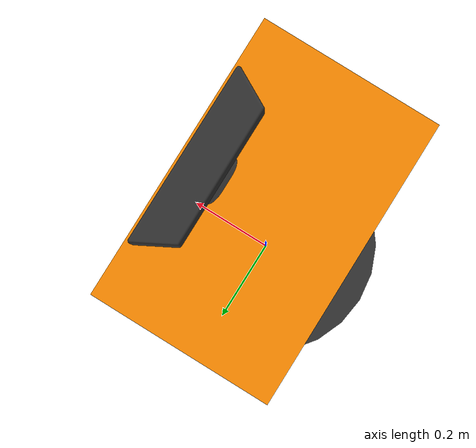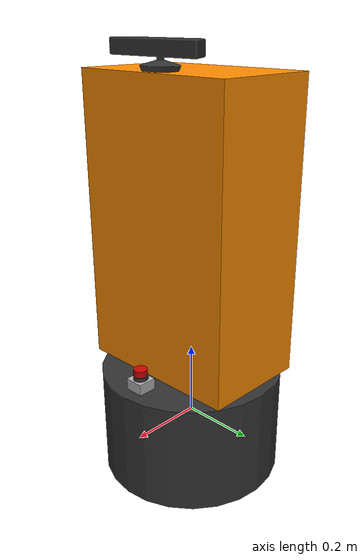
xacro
<?xml version="1.0"?>

<robot name="akira" xmlns:xacro="http://ros.org/wiki/xacro">

   <!-- Define a number of dimensions using properties -->
   <xacro:property name="PI" value="3.14159"/>

   <xacro:property name="torso_offset_x" value="0.0" />
   <xacro:property name="torso_offset_y" value="0.0" />
   <xacro:property name="torso_offset_z" value="0.55" />

   <xacro:property name="camera_offset_x" value="0.1" />
   <xacro:property name="camera_offset_y" value="0.0" />
   <xacro:property name="camera_offset_z" value="0.420" />

   <xacro:property name="laser_offset_x" value="0.19" />
   <xacro:property name="laser_offset_y" value="0.0" />
   <xacro:property name="laser_offset_z" value="0.16" />

   <!-- Include all component files -->

   <xacro:include filename="$(find akira_description)/urdf/materials.urdf.xacro" />

   <xacro:include filename="$(find akira_description)/urdf/akira_vehicle.urdf.xacro" />
   <xacro:include filename="$(find akira_description)/urdf/akira_torso.urdf.xacro" />
   <xacro:include filename="$(find akira_description)/urdf/akira_arm.urdf.xacro" />
   <xacro:include filename="$(find akira_description)/urdf/kinect.urdf.xacro" />
   <xacro:include filename="$(find akira_description)/urdf/laser.urdf.xacro" />

   <xacro:include filename="$(find akira_description)/urdf/akira.gazebo" />

   <!-- Add the base and wheels -->
   <base name="base" color="Black"/>

   <!-- Attach the torso -->
   <torso name="torso" parent="base" color="Orange">
      <origin xyz="${torso_offset_x} ${torso_offset_y} ${torso_offset_z}" rpy="0 0 0" />
   </torso>

   <!-- Attach the right arm -->

   <!-- Attach the right gripper -->

   <!-- Attach the camera -->
   <camera name="camera" parent="torso" color="Black">
    <origin xyz="${camera_offset_x} ${camera_offset_y} ${camera_offset_z}" rpy="0 0 0" />
   </camera>

   <!-- Attach the laser -->
   <laser parent="base" color="Grey">
      <origin xyz="${laser_offset_x} ${laser_offset_y} ${laser_offset_z}" rpy="0 0 0 " />
   </laser>

</robot>

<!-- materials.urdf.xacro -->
<robot>
	<!-- Put all the color definitions in a separate file -->
	<material name="Black">
	<color rgba="0.2 0.2 0.2 1.0"/>
	</material>

	<material name="TransparentBlack">
	<color rgba="0.2 0.2 0.2 0.8"/>
	</material>

	<material name="Orange">
	<color rgba="1.0 0.55 0.0 1.0"/>
	</material>

	<material name="Grey">
	<color rgba="0.7 0.7 0.7 1.0"/>
	</material>

	<material name="DarkGrey">
	<color rgba="0.3 0.3 0.3 1.0"/>
	</material>

	<material name="Red">
	<color rgba="0.8 0.0 0.0 1.0"/>
	</material>

	<material name="White">
	<color rgba="1.0 1.0 1.0 1.0"/>
	</material>

	<material name="OffWhite">
	<color rgba="0.8 0.8 0.8 1.0"/>
	</material>

	<material name="Blue">
	<color rgba="0.0 0.0 0.8 1.0"/>
	</material>

	<material name="Green">
	<color rgba="0.0 0.8 0.0 1.0"/>
	</material>

	<material name="TransparentGreen">
	<color rgba="0.0 0.8 0.0 0.5"/>
	</material>

	<material name="Danboru">
	<!--color rgba="0.796 0.663 0.090 1.0"/-->
	<color rgba="0.784 0.627 0.392 1.0"/>
	</material>

</robot>

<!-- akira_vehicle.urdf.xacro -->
<robot name="base" xmlns:xacro="http://ros.org/wiki/xacro">

	<!-- Define a number of dimensions using properties -->
	<xacro:property name="base_radius" value="0.25" />
	<xacro:property name="base_length" value="0.3" />
	<xacro:property name="wheel_radius" value="0.15" />
	<xacro:property name="wheel_length" value="0.1" />
	<xacro:property name="wheel_axis_length" value="0.25" />
	<xacro:property name="wheel_offset_x" value="0" />
	<xacro:property name="wheel_offset_y" value="0" />
	<xacro:property name="wheel_offset_z" value="0" />

	<xacro:property name="PI" value="3.1415" />
	<xacro:property name="SIN30" value="0.5" />
	<xacro:property name="COS30" value="0.8660" />

	<xacro:property name="base_mesh_scale" value="1.0" />

	<!-- define a wheel -->
	<!-- Link & joint -->
	<xacro:macro name="wheel" params="suffix parent reflect color">
	  <!-- joint -->
	  <joint name="${parent}_${suffix}_wheel_joint" type="fixed">
	    <!-- right: x=L*sin30 y=-L*cos30 -->
	    <!-- left: x=L*sin30 y=L*cos30 -->
	    <origin xyz="${wheel_axis_length*SIN30} ${-1.0*reflect*wheel_axis_length*COS30} ${wheel_offset_z}" rpy="${reflect*PI/2} 0 ${reflect*PI/6}" />
	    <parent link="${parent}_link" />
	    <child link="${parent}_${suffix}_wheel_link" />
	  </joint>

	  <!-- link -->
	  <link name="${parent}_${suffix}_wheel_link">
	    <!-- kokoha atode mesh ninarukamo -->
	    <visual>
	      <origin xyz="0 0 0" rpy="0 0 0" />
	      <geometry>
	        <cylinder radius="${wheel_radius}" length="${wheel_length}" />
	      </geometry>
	      <material name="${color}" />
	    </visual>
	  </link>
	</xacro:macro>

	<!-- The base link -->
	<xacro:macro name="base" params="name color">
	  <!-- link -->
	  <link name="${name}_link">
	    <visual>
	      <origin xyz="0 0 0" rpy="0 0 0" />
	      <geometry>
	        <!--mesh filename="package://akira_description/meshes/akira_vehicle.stl" scale="${base_mesh_scale} ${base_mesh_scale} ${base_mesh_scale}" /-->
	      <cylinder radius="${base_radius}" length="${base_length}" />
	      </geometry>
	      <material name="${color}" />
	    </visual>
	    <collision>
	      <origin xyz="0 0 0" rpy="0 0 0" />
	      <geometry>
	        <cylinder radius="${base_radius+0.05}" length="${base_length}" />
	      </geometry>
	    </collision>
	  </link>
	</xacro:macro>

	<!-- The role of the base_footprint is essentially to define
	     the elevation of the base above the ground. -->
	<link name="base_footprint">
	  <visual>
	      <origin xyz="0 0 0" rpy="0 0 0" />
	       <geometry>
	          <box size="0.05 0.05 0.001" />
	       </geometry>
	       <material name="TransparentGreen" />
	   </visual>
	</link>

	<joint name="base_joint" type="fixed">
	  <origin xyz="0 0 ${-base_length/2}" rpy="0 0 0" />
	  <parent link="base_link" />
	  <child link="base_footprint" />
	</joint>

</robot>

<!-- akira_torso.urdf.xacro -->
<robot name="torso" xmlns:xacro="http://ros.org/wiki/xacro">
  <!-- Define a number of dimensions using properties -->

  <xacro:property name="torso_size_x" value="0.29" />
  <xacro:property name="torso_size_y" value="0.46" />
  <xacro:property name="torso_size_z" value="0.77" />

  <xacro:property name="TORSO_MESH_SCALE" value="1.0" />

  <!-- Define the torso -->
  <xacro:macro name="torso" params="parent name color *origin">
    <joint name="${parent}_${name}_joint" type="fixed">
      <xacro:insert_block name="origin" />
      <parent link="${parent}_link"/>
      <child link="${name}_link"/>
    </joint>

    <link name="${name}_link">
      <visual>
        <origin xyz="0 0 0" rpy="0 0 0" />
        <geometry>
          <!--mesh filename="package://akira_description/meshes/akira_torso.stl" scale="${TORSO_MESH_SCALE} ${TORSO_MESH_SCALE} ${TORSO_MESH_SCALE}" /-->
          <box size="${torso_size_x} ${torso_size_y} ${torso_size_z}" />
        </geometry>
        <material name="${color}" />
      </visual>

      <collision>
        <origin xyz="0 0 0" rpy="0 0 0" />
        <geometry>
          <!--box size="${torso_size_x} ${torso_size_y} ${torso_size_z}" /-->
	  <!-- !!! 2014.12.15 modified for debug !!! -->
	  <box size="0.2 0.2 0.2" />
        </geometry>
      </collision>
      </link>
    </xacro:macro>
</robot>

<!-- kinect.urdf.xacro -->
<robot name="kinect" xmlns:xacro="http://ros.org/wiki/xacro">

   <!-- Define a number of dimensions using properties -->
   <xacro:property name="kinect_size_x" value="0.07271" />
   <xacro:property name="kinect_size_y" value="0.27794" />
   <xacro:property name="kinect_size_z" value="0.070" />

   <xacro:property name="camera_mesh_scale" value="1.0" />

   <xacro:property name="PI" value="3.1415" />

   <!-- Define a camera link for a Kinect -->
   <xacro:macro name="camera" params="parent name color *origin">
      <joint name="${parent}_${name}_joint" type="fixed">
         <xacro:insert_block name="origin" />
         <parent link="${parent}_link"/>
         <child link="${name}_link"/>
      </joint>
      <link name="${name}_link">
         <visual>
            <origin xyz="0 0 0" rpy="0 0 ${PI/2}" />
            <geometry>
               <mesh filename="package://akira_description/meshes/kinect.dae" scale="${camera_mesh_scale} ${camera_mesh_scale} ${camera_mesh_scale}" />
            </geometry>
            <material name="${color}" />
         </visual>
         <collision>
           <origin xyz="0 0 0" rpy="0 0 0" />
           <geometry>
              <box size="${kinect_size_x} ${kinect_size_y} ${kinect_size_z}"/>
           </geometry>
         </collision>
      </link>

      <joint name="camera_depth_joint" type="fixed">
         <origin xyz="0 0.0125 0.015" rpy="0 0 0" />
          <parent link="camera_link" />
          <child link="camera_depth_frame" />
      </joint>

      <link name="camera_depth_frame">
      <inertial>
         <mass value="0.000001" />
         <origin xyz="0 0 0" />
         <inertia ixx="0.0001" ixy="0.0" ixz="0.0"
            iyy="0.0001" iyz="0.0"
            izz="0.0001" />
         </inertial>
      </link>

      <joint name="camera_depth_optical_joint" type="fixed">
         <origin xyz="0 0 0" rpy="${-PI/2} 0 ${-PI/2}" />
         <parent link="camera_depth_frame" />
         <child link="camera_depth_optical_frame" />
      </joint>

      <link name="camera_depth_optical_frame">
         <inertial>
            <mass value="0.000001" />
            <origin xyz="0 0 0" />
            <inertia ixx="0.0001" ixy="0.0" ixz="0.0"
               iyy="0.0001" iyz="0.0"
               izz="0.0001" />
         </inertial>
      </link>

      <joint name="camera_rgb_joint" type="fixed">
         <origin xyz="0 -0.0125 0.015" rpy="0 0 0" />
         <parent link="camera_link" />
         <child link="camera_rgb_frame" />
      </joint>

      <link name="camera_rgb_frame">
         <inertial>
         <mass value="0.000001" />
         <origin xyz="0 0 0" />
         <inertia ixx="0.0001" ixy="0.0" ixz="0.0"
            iyy="0.0001" iyz="0.0"
            izz="0.0001" />
         </inertial>
      </link>

      <joint name="camera_rgb_optical_joint" type="fixed">
         <origin xyz="0 0 0" rpy="${-PI/2} 0 ${-PI/2}" />
         <parent link="camera_rgb_frame" />
         <child link="camera_rgb_optical_frame" />
      </joint>

      <link name="camera_rgb_optical_frame">
         <inertial>
            <mass value="0.000001" />
            <origin xyz="0 0 0" />
            <inertia ixx="0.0001" ixy="0.0" ixz="0.0"
               iyy="0.0001" iyz="0.0"
               izz="0.0001" />
         </inertial>
      </link>

   </xacro:macro>

</robot>

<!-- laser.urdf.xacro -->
<robot name="laser" xmlns:xacro="http://ros.org/wiki/xacro">

  <!-- A box-and-cylinder model of the Hokuyo URG-04LX-UG01 laser scanner -->

  <!-- Define the laser macro -->
  <xacro:macro name="laser" params="parent color *origin">
    <joint name="${parent}_laser_bottom_joint" type="fixed">
      <xacro:insert_block name="origin" />
      <parent link="${parent}_link"/>
      <child link="base_laser_bottom"/>
    </joint>

   <link name="base_laser_bottom">
	 <visual>
        <origin xyz="0 0 0" rpy="0 0 0" />
        <geometry>
          <box size="0.05 0.05 0.041" />
        </geometry>
       <material name="${color}" />
     </visual>
     <collision>
        <origin xyz="0 0 0" rpy="0 0 0" />
      <geometry>
        <box size="0.05 0.05 0.041" />
      </geometry>
       </collision>
	 <inertial>
       <mass value="0.1" />
         <inertia ixx="0.001" ixy="0.0" ixz="0.0"
                   iyy="0.001" iyz="0.0"
                   izz="0.001" />
      </inertial>
   </link>

   <link name="base_laser_middle">
	 <visual>
        <origin xyz="0 0 0" rpy="0 0 0" />
		<geometry>
          <cylinder length="0.0115" radius=".02"/>
        </geometry>
        <material name="dark_grey">
           <color rgba="0.2 0.2 0.2 1.0"/>
        </material>
     </visual>
     <collision>
        <origin xyz="0 0 0" rpy="0 0 0" />
		 <geometry>
          <cylinder length="0.0115" radius=".02"/>
         </geometry>
       </collision>
	 <inertial>
       <mass value="0.1" />
         <inertia ixx="0.001" ixy="0.0" ixz="0.0"
                   iyy="0.001" iyz="0.0"
                   izz="0.001" />
      </inertial>
   </link>

   <joint name="base_laser_middle_joint" type="fixed">
     <parent link="base_laser_bottom"/>
     <child link="base_laser_middle" />
     <origin xyz="0 0 0.02625" rpy="0 0 0" />
   </joint>

   <link name="base_laser">
	 <visual>
        <origin xyz="0 0 0" rpy="0 0 0" />
		<geometry>
          <cylinder length="0.0175" radius=".0185"/>
        </geometry>
        <material name="Red" />
     </visual>
     <collision>
        <origin xyz="0 0 0" rpy="0 0 0" />
		 <geometry>
          <cylinder length="0.0175" radius=".0185"/>
         </geometry>
       </collision>
	 <inertial>
       <mass value="0.1" />
         <inertia ixx="0.001" ixy="0.0" ixz="0.0"
                   iyy="0.001" iyz="0.0"
                   izz="0.001" />
      </inertial>
   </link>

   <joint name="base_laser_joint" type="fixed">
     <parent link="base_laser_middle"/>
     <child link="base_laser" />
     <origin xyz="0 0 0.0145" rpy="0 0 0" />
   </joint>

  </xacro:macro>

 </robot>
